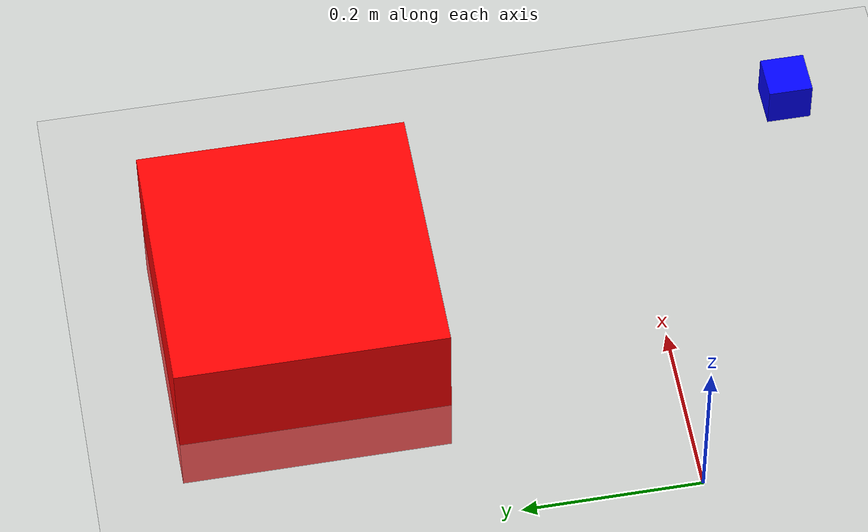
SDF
<?xml version="1.0" ?>
<sdf version="1.8">
  <world name="gp7_world">
    <physics name="1ms" type="ignored">
      <max_step_size>0.001</max_step_size>
      <real_time_factor>1.0</real_time_factor>
    </physics>

    <plugin filename="gz-sim-physics-system" name="gz::sim::systems::Physics"></plugin>
    <plugin filename="gz-sim-user-commands-system" name="gz::sim::systems::UserCommands"></plugin>
    <plugin filename="gz-sim-scene-broadcaster-system" name="gz::sim::systems::SceneBroadcaster"></plugin>

    <light type="directional" name="sun">
      <cast_shadows>true</cast_shadows>
      <pose>0 0 10 0 0 0</pose>
      <diffuse>0.8 0.8 0.8 1</diffuse>
      <specular>0.2 0.2 0.2 1</specular>
      <direction>-0.5 0.1 -0.9</direction>
    </light>

    <model name="ground_plane">
      <static>true</static>
      <link name="link">
        <collision name="collision">
          <geometry><plane><normal>0 0 1</normal></plane></geometry>
        </collision>
        <visual name="visual">
          <geometry><plane><normal>0 0 1</normal><size>100 100</size></plane></geometry>
          <material><ambient>0.8 0.8 0.8 1</ambient><diffuse>0.8 0.8 0.8 1</diffuse></material>
        </visual>
      </link>
    </model>

    <model name="Box_A">
      <pose>0.3 0.4 0.025 0 0 0</pose>
      <static>true</static>
      <link name="link">
        <visual name="visual">
          <geometry><box><size>0.3 0.3 0.2</size></box></geometry>
          <material><ambient>1 0 0 1</ambient><diffuse>1 0 0 1</diffuse></material>
        </visual>
        <collision name="collision">
          <geometry><box><size>0.3 0.3 0.2</size></box></geometry>
          <surface>
            <friction>
              <ode>
                <mu>100.0</mu>     <mu2>100.0</mu2>   </ode>
            </friction>
            <contact>
              <ode>
                <kp>100000.0</kp>  <kd>1.0</kd>       <min_depth>0.001</min_depth> <max_vel>0.1</max_vel>       </ode>
            </contact>
          </surface>
        </collision>
      </link>
    </model>

    <model name="Box_B">
      <pose>0.5 -0.2 0.025 0 0 0</pose>
      <link name="link">
        <velocity_decay>
          <linear>0.5</linear>  <angular>10</angular>
        </velocity_decay>
        <inertial><mass>0.1</mass></inertial>
        <visual name="visual">
          <geometry><box><size>0.05 0.05 0.05</size></box></geometry>
          <material><ambient>0 0 1 1</ambient><diffuse>0 0 1 1</diffuse></material>
        </visual>
        <collision name="collision">
          <geometry><box><size>0.05 0.05 0.05</size></box></geometry>
          <surface>
            <friction>
              <ode>
                <mu>100.0</mu>     <mu2>100.0</mu2>   </ode>
            </friction>
            <contact>
              <ode>
                <kp>100000.0</kp>  <kd>1.0</kd>       <min_depth>0.001</min_depth> <max_vel>0.1</max_vel>       </ode>
            </contact>
          </surface>
        </collision>
      </link>
    </model>
  </world>
</sdf>
